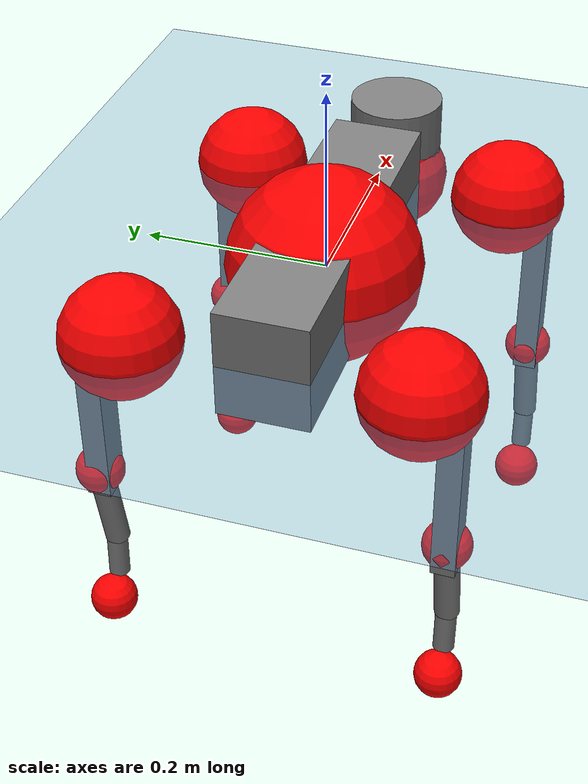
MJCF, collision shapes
<mujoco model="go2">
  <compiler angle="radian" assetdir="assets" balanceinertia="true" inertiafromgeom="false"/>

  <option timestep="0.005" density="1.2" viscosity="2e-05"/>

  <size nkey="1"/>

  <visual>
    <quality shadowsize="8192"/>
    <map shadowclip="0.5"/>
  </visual>

  <default>
    <default class="/">
      <geom contype="0" conaffinity="0" group="1" solref="-1000 -80"/>
      <site size="0.01 0.005 0.005" group="5"/>
      <general forcelimited="true" biastype="affine" gainprm="20" biasprm="0 -20 -0.5"/>
      <default class="go2">
        <joint armature="0.01" damping="0.01" frictionloss="0.2"/>
        <geom condim="1" margin="0.001"/>
        <default class="visual">
          <geom type="mesh" group="2"/>
        </default>
        <default class="collision">
          <geom group="3"/>
          <default class="foot">
            <geom size="0.022 0 0" condim="6" priority="1" friction="0.8 0.02 0.01" solimp="0.015 1 0.022"/>
          </default>
        </default>
        <default class="reward_collision_sphere">
          <geom group="5" rgba="1 0 0 1"/>
        </default>
      </default>
    </default>
  </default>

  <asset>
    <texture type="skybox" colorspace="auto" name="//unnamed_texture_0" builtin="gradient" rgb1="0.95 0.95 0.95" rgb2="0.95 0.95 0.95" width="100" height="600"/>
    <texture type="2d" colorspace="auto" name="texplane" builtin="checker" rgb1="0.345 0.575 0.748" rgb2="0.345 0.575 0.748" markrgb="1 1 1" width="512" height="512"/>
    <material name="MatPlane" class="/" texture="texplane" texuniform="true" texrepeat="2 2" specular="0.9"/>
    <material name="metal" class="/" rgba="0.9 0.95 0.95 1"/>
    <material name="black" class="/" rgba="0 0 0 1"/>
    <material name="white" class="/"/>
    <material name="gray" class="/" rgba="0.671705 0.692426 0.77427 1"/>
    <mesh name="base_0" class="/" file="base_0.obj"/>
    <mesh name="base_1" class="/" file="base_1.obj"/>
    <mesh name="base_2" class="/" file="base_2.obj"/>
    <mesh name="base_3" class="/" file="base_3.obj"/>
    <mesh name="base_4" class="/" file="base_4.obj"/>
    <mesh name="hip_0" class="/" file="hip_0.obj"/>
    <mesh name="hip_1" class="/" file="hip_1.obj"/>
    <mesh name="thigh_0" class="/" file="thigh_0.obj"/>
    <mesh name="thigh_1" class="/" file="thigh_1.obj"/>
    <mesh name="thigh_mirror_0" class="/" file="thigh_mirror_0.obj"/>
    <mesh name="thigh_mirror_1" class="/" file="thigh_mirror_1.obj"/>
    <mesh name="calf_0" class="/" file="calf_0.obj"/>
    <mesh name="calf_1" class="/" file="calf_1.obj"/>
    <mesh name="calf_mirror_0" class="/" file="calf_mirror_0.obj"/>
    <mesh name="calf_mirror_1" class="/" file="calf_mirror_1.obj"/>
    <mesh name="foot" class="/" file="foot.obj"/>
  </asset>

  <worldbody>
    <geom name="floor" class="/" size="100 100 0.125" type="plane" group="0" material="MatPlane"/>
    <light name="toplight_shadow" class="/" pos="0 0 5" dir="0.0990148 0.0990148 -0.990148" type="directional" ambient="0.04 0.04 0.04" diffuse="0.55 0.55 0.55" specular="0.12 0.12 0.12"/>
    <light name="toplight_fill" class="/" pos="0 0 5" dir="0.0990148 0.0990148 -0.990148" type="directional" castshadow="false" ambient="0.04 0.04 0.04" diffuse="0.3 0.3 0.3" specular="0.08 0.08 0.08"/>
    <body name="trunk" childclass="go2" pos="0.000805373 0.00204415 0.00163318" quat="1 -6.15637e-06 0.000112477 -2.81033e-05">
      <inertial pos="0.0222922 0.00259226 -0.0043873" quat="-0.0304344 0.709042 0.00675528 0.704477" mass="8.23426" diaginertia="0.0890632 0.37323 0.0133808"/>
      <joint name="//unnamed_joint_0" type="free" armature="0" damping="0" frictionloss="0"/>
      <geom name="//unnamed_geom_1" class="visual" material="black" mesh="base_0"/>
      <geom name="//unnamed_geom_2" class="visual" material="black" mesh="base_1"/>
      <geom name="//unnamed_geom_3" class="visual" material="black" mesh="base_2"/>
      <geom name="//unnamed_geom_4" class="visual" material="white" mesh="base_3"/>
      <geom name="//unnamed_geom_5" class="visual" material="gray" mesh="base_4"/>
      <geom name="trunk_1" class="collision" size="0.198357 0.0492994 0.0601083" type="box"/>
      <geom name="trunk_2" class="collision" size="0.0527266 0.0474539" pos="0.275502 0 0.00885626" type="cylinder"/>
      <geom name="trunk_3" class="collision" size="0.049563" pos="0.283236 0 -0.0531375"/>
      <geom name="//unnamed_geom_9" class="reward_collision_sphere" size="0.105453"/>
      <geom name="//unnamed_geom_10" class="reward_collision_sphere" size="0.0632719" pos="0.270669 0 -0.0398532"/>
      <site name="imu" pos="-0.0334821 0.000939294 0.04763" size="0.0105453"/>
      <camera name="track" pos="0 -2.62259 0" quat="0.707107 0.707107 0 0" mode="trackcom"/>
      <camera name="ego_camera" pos="0.301602 0 0.0398532" quat="-0.5 -0.5 0.5 0.5"/>
      <body name="FL_hip" pos="0.186134 0.0549492 -0.0042186" quat="0.999999 -0.000405046 -9.08089e-05 -0.00120237">
        <inertial pos="-0.00724492 0.00264092 0.000251322" quat="0.500435 0.494305 0.511077 0.493992" mass="0.813695" diaginertia="0.000747061 0.00243802 0.000257321"/>
        <joint name="FL_hip_joint" pos="0 0 0" axis="0.999989 0.00146378 -0.00443967" range="-1.17233 1.05929" armature="0.0101087" damping="0.019789" frictionloss="0.202097"/>
        <geom name="//unnamed_geom_11" class="visual" material="metal" mesh="hip_0"/>
        <geom name="//unnamed_geom_12" class="visual" material="gray" mesh="hip_1"/>
        <geom name="//unnamed_geom_13" class="collision" size="0.0485085 0.0210906" pos="0 0.104904 0" quat="0.707107 0.707107 0 0" type="cylinder"/>
        <geom name="//unnamed_geom_14" class="reward_collision_sphere" size="0.0632719" pos="0 0.0917906 0"/>
        <body name="FL_thigh" pos="-0.000262167 0.119288 -0.0018095" quat="1 -0.000205089 8.02447e-05 0.00055555">
          <inertial pos="-0.00482045 -0.0293777 -0.0265208" quat="0.826143 0.0838565 -0.035566 0.556049" mass="1.35291" diaginertia="0.00518457 0.0228513 0.000470401"/>
          <joint name="FL_thigh_joint" pos="0 0 0" axis="-0.00186492 0.999943 -0.0105165" range="-1.55189 3.4016" armature="0.00916443" damping="0.0217543" frictionloss="0.229772"/>
          <geom name="//unnamed_geom_15" class="visual" material="metal" mesh="thigh_0"/>
          <geom name="//unnamed_geom_16" class="visual" material="gray" mesh="thigh_1"/>
          <geom name="//unnamed_geom_17" class="collision" size="0.112308 0.012918 0.017927" pos="0 0 -0.0943191" quat="0.707107 0 0.707107 0" type="box"/>
          <body name="FL_calf" pos="-0.00323252 0.00431697 -0.190257" quat="1 -7.77119e-05 0.000134812 -0.000216127">
            <inertial pos="0.00542761 -0.000748324 -0.119598" quat="0.713159 -0.00030761 -0.0045452 0.700987" mass="0.272956" diaginertia="0.00127406 0.00528257 3.04747e-05"/>
            <joint name="FL_calf_joint" pos="0 0 0" axis="0.000419124 0.999997 -0.00227397" range="-2.61679 -0.851796" armature="0.0108037" damping="0.0107614" frictionloss="0.21396"/>
            <geom name="//unnamed_geom_18" class="visual" material="gray" mesh="calf_0"/>
            <geom name="//unnamed_geom_19" class="visual" material="black" mesh="calf_1"/>
            <geom name="FL_calf0" class="collision" size="0.0126544 0.0632719" pos="0.0077334 0 -0.0531375" quat="0.994493 0 -0.104807 0" type="cylinder"/>
            <geom name="//unnamed_geom_21" class="collision" size="0.0115998 0.0342723" pos="0.0193335 0 -0.131073" quat="0.999688 0 0.0249974 0" type="cylinder"/>
            <geom name="//unnamed_geom_22" class="visual" pos="0 0 -0.188638" quat="1 0 0 0" material="black" mesh="foot"/>
            <geom name="FL_foot" class="foot" size="0.0203153" pos="-0.00193335 0 -0.188638"/>
            <geom name="//unnamed_geom_24" class="reward_collision_sphere" size="0.0263633"/>
            <geom name="//unnamed_geom_25" class="reward_collision_sphere" size="0.0263633" pos="-0.00193335 0 -0.188638"/>
            <site name="FL_foot" class="foot" pos="-0.00193335 0 -0.188638" size="0.0105453"/>
          </body>
        </body>
      </body>
      <body name="FR_hip" pos="0.190878 -0.0616065 -0.000169332" quat="1 -1.7815e-06 3.9027e-06 -0.000102745">
        <inertial pos="-0.00690629 -0.000176538 0.00202598" quat="0.494919 0.507956 0.497349 0.499679" mass="0.84504" diaginertia="0.000739863 0.00254022 0.000258701"/>
        <joint name="FR_hip_joint" pos="0 0 0" axis="0.999994 -0.00204187 0.00292358" range="-1.04664 1.02821" armature="0.0116967" damping="0.0160775" frictionloss="0.231371"/>
        <geom name="//unnamed_geom_26" class="visual" pos="0 3.70825e-09 1.59055e-07" quat="4.63268e-05 1 0 0" material="metal" mesh="hip_0"/>
        <geom name="//unnamed_geom_27" class="visual" pos="0 6.01152e-09 -3.93403e-07" quat="4.63268e-05 1 0 0" material="gray" mesh="hip_1"/>
        <geom name="//unnamed_geom_28" class="collision" size="0.0485085 0.0210906" pos="0 -0.104904 0" quat="0.707107 0.707107 0 0" type="cylinder"/>
        <geom name="//unnamed_geom_29" class="reward_collision_sphere" size="0.0632719" pos="0 -0.0917906 0"/>
        <body name="FR_thigh" pos="-0.0046101 -0.131108 -0.00595625" quat="1 -0.000439762 3.49605e-06 -0.000174202">
          <inertial pos="-0.0048935 0.0349472 -0.0299393" quat="0.551574 -0.0196164 0.0842228 0.829631" mass="1.28349" diaginertia="0.00493722 0.0219559 0.000452429"/>
          <joint name="FR_thigh_joint" pos="0 0 0" axis="-0.00440128 -0.999957 -0.00817334" range="-3.39695 1.57152" armature="0.0115014" damping="0.0223004" frictionloss="0.208786"/>
          <geom name="//unnamed_geom_30" class="visual" material="metal" mesh="thigh_mirror_0"/>
          <geom name="//unnamed_geom_31" class="visual" material="gray" mesh="thigh_mirror_1"/>
          <geom name="//unnamed_geom_32" class="collision" size="0.112308 0.012918 0.017927" pos="0 0 -0.0943191" quat="0.707107 0 0.707107 0" type="box"/>
          <body name="FR_calf" pos="0.00444863 0.00114903 -0.188038" quat="0.999999 -0.00122932 -0.00107561 -3.49491e-05">
            <inertial pos="0.00780663 0.00107309 -0.126271" quat="0.703946 -0.00331834 0.00143254 0.710244" mass="0.28935" diaginertia="0.00129936 0.00564348 2.97929e-05"/>
            <joint name="FR_calf_joint" pos="0 0 0" axis="-0.0260389 -0.999631 0.00769118" stiffness="0.00610016" range="0.884844 2.73031" armature="0.00837131" damping="0" frictionloss="0.243799"/>
            <geom name="//unnamed_geom_33" class="visual" material="gray" mesh="calf_mirror_0"/>
            <geom name="//unnamed_geom_34" class="visual" material="black" mesh="calf_mirror_1"/>
            <geom name="FR_calf0" class="collision" size="0.0137089 0.0632719" pos="0.00966674 0 -0.0531375" quat="0.995004 0 -0.0998334 0" type="cylinder"/>
            <geom name="//unnamed_geom_36" class="collision" size="0.0115998 0.0342723" pos="0.0193335 0 -0.131073" quat="0.999688 0 0.0249974 0" type="cylinder"/>
            <geom name="//unnamed_geom_37" class="visual" pos="0 0 -0.188638" quat="1 0 0 0" material="black" mesh="foot"/>
            <geom name="FR_foot" class="foot" size="0.0215787" pos="-0.00193335 0 -0.188638"/>
            <geom name="//unnamed_geom_39" class="reward_collision_sphere" size="0.0263633"/>
            <geom name="//unnamed_geom_40" class="reward_collision_sphere" size="0.0263633" pos="-0.00193335 0 -0.188638"/>
            <site name="FR_foot" class="foot" pos="-0.00193335 0 -0.188638" size="0.0105453"/>
          </body>
        </body>
      </body>
      <body name="RL_hip" pos="-0.185383 0.0589446 0.00138655" quat="1 6.76153e-05 0.000662434 -0.000398213">
        <inertial pos="0.0044236 0.00523385 0.000136812" quat="0.501851 0.506836 0.498185 0.493026" mass="0.832009" diaginertia="0.000753392 0.00235834 0.000268773"/>
        <joint name="RL_hip_joint" pos="0 0 0" axis="-0.999998 -0.00102297 -0.00184428" range="-0.998527 1.01771" armature="0.0102752" damping="0.00639534" frictionloss="0.236743"/>
        <geom name="//unnamed_geom_41" class="visual" pos="-7.06063e-10 0 -1.38405e-07" quat="4.63268e-05 0 1 0" material="metal" mesh="hip_0"/>
        <geom name="//unnamed_geom_42" class="visual" pos="-1.14461e-09 0 -1.22745e-07" quat="4.63268e-05 0 1 0" material="gray" mesh="hip_1"/>
        <geom name="//unnamed_geom_43" class="collision" size="0.0485085 0.0210906" pos="0 0.104904 0" quat="0.707107 0.707107 0 0" type="cylinder"/>
        <geom name="//unnamed_geom_44" class="reward_collision_sphere" size="0.0632719" pos="0 0.0917906 0"/>
        <body name="RL_thigh" pos="0.000640749 0.125749 0.0050884" quat="0.999999 -0.000302329 0.000345808 -0.00118829">
          <inertial pos="-0.00408033 -0.03084 -0.0243139" quat="0.829541 0.0844497 -0.020029 0.55166" mass="1.27615" diaginertia="0.00498273 0.0235704 0.000479395"/>
          <joint name="RL_thigh_joint" pos="0 0 0" axis="-0.0121707 0.999726 0.0199727" range="-0.483883 4.53292" armature="0.00972836" damping="0.0204958" frictionloss="0.193715"/>
          <geom name="//unnamed_geom_45" class="visual" material="metal" mesh="thigh_0"/>
          <geom name="//unnamed_geom_46" class="visual" material="gray" mesh="thigh_1"/>
          <geom name="//unnamed_geom_47" class="collision" size="0.112308 0.012918 0.017927" pos="0 0 -0.0943191" quat="0.707107 0 0.707107 0" type="box"/>
          <body name="RL_calf" pos="0.00161231 0.00591244 -0.187609" quat="0.999999 -0.000706984 -0.000355039 0.00077049">
            <inertial pos="0.00441413 -0.00151162 -0.127458" quat="0.708948 -0.00231788 -0.00440818 0.705243" mass="0.281647" diaginertia="0.00120268 0.00559682 2.88269e-05"/>
            <joint name="RL_calf_joint" pos="0 0 0" axis="-0.00580124 0.999975 -0.0040837" range="-2.83361 -0.800092" armature="0.0105502" damping="0.0103061" frictionloss="0.214944"/>
            <geom name="//unnamed_geom_48" class="visual" material="gray" mesh="calf_0"/>
            <geom name="//unnamed_geom_49" class="visual" material="black" mesh="calf_1"/>
            <geom name="RL_calf0" class="collision" size="0.0137089 0.0632719" pos="0.00966674 0 -0.0531375" quat="0.995004 0 -0.0998334 0" type="cylinder"/>
            <geom name="//unnamed_geom_51" class="collision" size="0.0115998 0.0342723" pos="0.0193335 0 -0.131073" quat="0.999688 0 0.0249974 0" type="cylinder"/>
            <geom name="//unnamed_geom_52" class="visual" pos="0 0 -0.188638" quat="1 0 0 0" material="black" mesh="foot"/>
            <geom name="RL_foot" class="foot" size="0.0231249" pos="-0.00193335 0 -0.188638"/>
            <geom name="//unnamed_geom_54" class="reward_collision_sphere" size="0.0263633"/>
            <geom name="//unnamed_geom_55" class="reward_collision_sphere" size="0.0263633" pos="-0.00193335 0 -0.188638"/>
            <site name="RL_foot" class="foot" pos="-0.00193335 0 -0.188638" size="0.0105453"/>
          </body>
        </body>
      </body>
      <body name="RR_hip" pos="-0.185347 -0.0625586 0.0022832" quat="0.999999 0.00111076 9.04879e-05 -0.00115652">
        <inertial pos="0.00736699 -0.00553811 0.00053453" quat="0.502819 0.497819 0.488165 0.510925" mass="0.803394" diaginertia="0.000730764 0.00236596 0.000247897"/>
        <joint name="RR_hip_joint" pos="0 0 0" axis="-0.999811 -0.0113338 -0.0158162" stiffness="0.00393883" range="-1.08971 1.13081" armature="0.0103217" damping="0.00654762" frictionloss="0.230362"/>
        <geom name="//unnamed_geom_56" class="visual" pos="7.17994e-10 3.70825e-09 -2.97459e-07" quat="2.14617e-09 4.63268e-05 4.63268e-05 -1" material="metal" mesh="hip_0"/>
        <geom name="//unnamed_geom_57" class="visual" pos="1.1151e-09 6.01152e-09 2.70658e-07" quat="2.14617e-09 4.63268e-05 4.63268e-05 -1" material="gray" mesh="hip_1"/>
        <geom name="//unnamed_geom_58" class="collision" size="0.0485085 0.0210906" pos="0 -0.104904 0" quat="0.707107 0.707107 0 0" type="cylinder"/>
        <geom name="//unnamed_geom_59" class="reward_collision_sphere" size="0.0632719" pos="0 -0.0917906 0"/>
        <body name="RR_thigh" pos="-0.000361391 -0.126758 -0.000954481" quat="0.999998 0.00107633 0.00124949 -0.000669989">
          <inertial pos="-0.00326067 0.0332519 -0.0291272" quat="0.542928 -0.0158109 0.0900485 0.834787" mass="1.36591" diaginertia="0.00512624 0.0227667 0.000478082"/>
          <joint name="RR_thigh_joint" pos="0 0 0" axis="0.0269084 -0.999638 -0.000106419" range="-4.49293 0.529397" armature="0.0101145" damping="0.0163087" frictionloss="0.236162"/>
          <geom name="//unnamed_geom_60" class="visual" material="metal" mesh="thigh_mirror_0"/>
          <geom name="//unnamed_geom_61" class="visual" material="gray" mesh="thigh_mirror_1"/>
          <geom name="//unnamed_geom_62" class="collision" size="0.112308 0.012918 0.017927" pos="0 0 -0.0943191" quat="0.707107 0 0.707107 0" type="box"/>
          <body name="RR_calf" pos="0.0069373 0.00189233 -0.187281" quat="1 0.000139321 -0.000286847 0.000362391">
            <inertial pos="-0.000263062 0.000981499 -0.127707" quat="0.697832 -0.00619931 0.00429528 0.716222" mass="0.277243" diaginertia="0.00118618 0.0054828 2.96575e-05"/>
            <joint name="RR_calf_joint" pos="0 0 0" axis="0.000242516 -0.999649 0.0265096" range="0.891601 2.6359" armature="0.0127334" damping="0" frictionloss="0.204353"/>
            <geom name="//unnamed_geom_63" class="visual" material="gray" mesh="calf_mirror_0"/>
            <geom name="//unnamed_geom_64" class="visual" material="black" mesh="calf_mirror_1"/>
            <geom name="RR_calf0" class="collision" size="0.0137089 0.0632719" pos="0.00966674 0 -0.0531375" quat="0.995004 0 -0.0998334 0" type="cylinder"/>
            <geom name="//unnamed_geom_66" class="collision" size="0.0115998 0.0342723" pos="0.0193335 0 -0.131073" quat="0.999688 0 0.0249974 0" type="cylinder"/>
            <geom name="//unnamed_geom_67" class="visual" pos="0 0 -0.188638" quat="1 0 0 0" material="black" mesh="foot"/>
            <geom name="RR_foot" class="foot" size="0.0234548" pos="-0.00193335 0 -0.188638"/>
            <geom name="//unnamed_geom_69" class="reward_collision_sphere" size="0.0263633"/>
            <geom name="//unnamed_geom_70" class="reward_collision_sphere" size="0.0263633" pos="-0.00193335 0 -0.188638"/>
            <site name="RR_foot" class="foot" pos="-0.00193335 0 -0.188638" size="0.0105453"/>
          </body>
        </body>
      </body>
    </body>
  </worldbody>

  <contact>
    <pair class="/" geom1="floor" geom2="FL_foot" name="//unnamed_contact_0"/>
    <pair class="/" geom1="floor" geom2="FR_foot" name="//unnamed_contact_1"/>
    <pair class="/" geom1="floor" geom2="RL_foot" name="//unnamed_contact_2"/>
    <pair class="/" geom1="floor" geom2="RR_foot" name="//unnamed_contact_3"/>
  </contact>

  <actuator>
    <general name="FL_hip" class="/" joint="FL_hip_joint" forcerange="-19.3151 19.3151" gainprm="18.7414" biasprm="0 -18.7414 -0.553885"/>
    <general name="FL_thigh" class="/" joint="FL_thigh_joint" forcerange="-25.7267 25.7267" gainprm="18.7414" biasprm="0 -18.7414 -0.553885"/>
    <general name="FL_calf" class="/" joint="FL_calf_joint" forcerange="-43.8568 43.8568" gainprm="18.7414" biasprm="0 -18.7414 -0.553885"/>
    <general name="FR_hip" class="/" joint="FR_hip_joint" forcerange="-20.7249 20.7249" gainprm="18.7414" biasprm="0 -18.7414 -0.553885"/>
    <general name="FR_thigh" class="/" joint="FR_thigh_joint" forcerange="-20.6878 20.6878" gainprm="18.7414" biasprm="0 -18.7414 -0.553885"/>
    <general name="FR_calf" class="/" joint="FR_calf_joint" forcerange="-46.2172 46.2172" gainprm="18.7414" biasprm="0 -18.7414 -0.553885"/>
    <general name="RL_hip" class="/" joint="RL_hip_joint" forcerange="-22.7054 22.7054" gainprm="18.7414" biasprm="0 -18.7414 -0.553885"/>
    <general name="RL_thigh" class="/" joint="RL_thigh_joint" forcerange="-27.2148 27.2148" gainprm="18.7414" biasprm="0 -18.7414 -0.553885"/>
    <general name="RL_calf" class="/" joint="RL_calf_joint" forcerange="-47.7445 47.7445" gainprm="18.7414" biasprm="0 -18.7414 -0.553885"/>
    <general name="RR_hip" class="/" joint="RR_hip_joint" forcerange="-29.9485 29.9485" gainprm="18.7414" biasprm="0 -18.7414 -0.553885"/>
    <general name="RR_thigh" class="/" joint="RR_thigh_joint" forcerange="-23.0202 23.0202" gainprm="18.7414" biasprm="0 -18.7414 -0.553885"/>
    <general name="RR_calf" class="/" joint="RR_calf_joint" forcerange="-46.3694 46.3694" gainprm="18.7414" biasprm="0 -18.7414 -0.553885"/>
  </actuator>

  <sensor>
    <gyro site="imu" name="imu_angular_velocity"/>
    <velocimeter site="imu" name="imu_linear_velocity"/>
    <framelinvel objtype="site" objname="FL_foot" name="FL_foot_global_linear_velocity"/>
    <framelinvel objtype="site" objname="FR_foot" name="FR_foot_global_linear_velocity"/>
    <framelinvel objtype="site" objname="RL_foot" name="RL_foot_global_linear_velocity"/>
    <framelinvel objtype="site" objname="RR_foot" name="RR_foot_global_linear_velocity"/>
  </sensor>

  <keyframe>
    <key name="home" qpos="0 0 0.325 1 0 0 0 0.1 0.8 -1.5 -0.1 -0.8 1.5 -0.1 0.8 -1.5 0.1 -0.8 1.5"/>
  </keyframe>
</mujoco>
